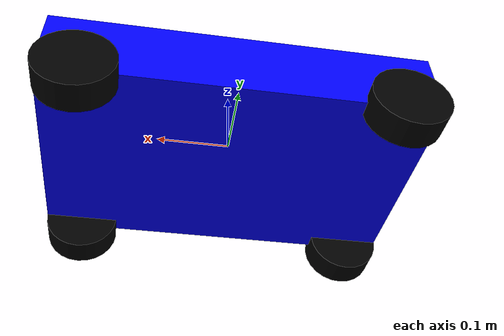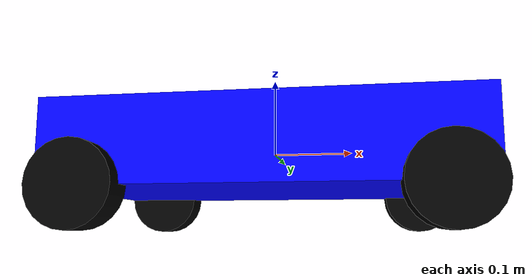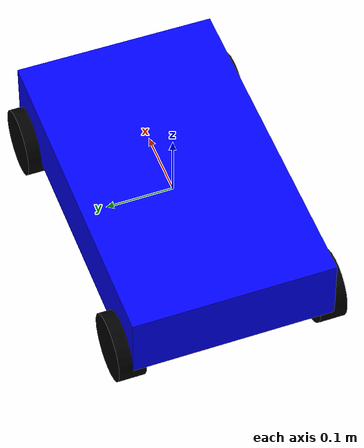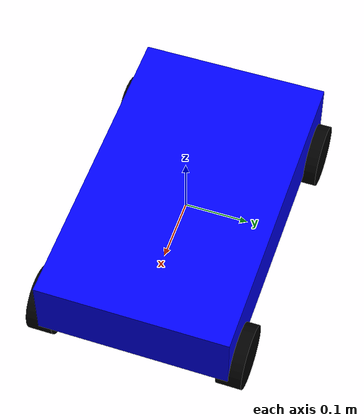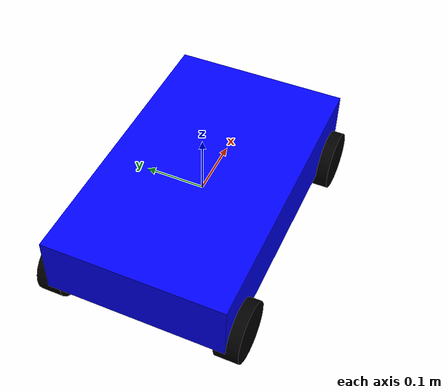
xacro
<?xml version="1.0"?>
<robot name="my_robot" xmlns:xacro="http://www.ros.org/wiki/xacro">

  <!-- Materials -->
  <material name="blue">
    <color rgba="0 0 1 1"/>
  </material>

  <material name="black">
    <color rgba="0 0 0 1"/>
  </material>

  <!-- Base Link -->
  <link name="base_link">

    <visual>
      <geometry>
        <box size="0.5 0.3 0.1"/>
      </geometry>
      <material name="blue"/>
    </visual>

    <collision>
      <geometry>
        <box size="0.5 0.3 0.1"/>
      </geometry>
    </collision>

    <inertial>
      <origin xyz="0 0 0"/>
      <mass value="2.0"/>

      <inertia
        ixx="0.1"
        ixy="0.0"
        ixz="0.0"
        iyy="0.1"
        iyz="0.0"
        izz="0.1"/>
    </inertial>

  </link>

  <!-- Wheel Macro -->
  <xacro:macro name="wheel" params="name x y">

    <link name="${name}">

      <visual>
        <origin rpy="1.57 0 0"/>
        <geometry>
          <cylinder radius="0.05" length="0.04"/>
        </geometry>
        <material name="black"/>
      </visual>

      <collision>
        <origin rpy="1.57 0 0"/>
        <geometry>
          <cylinder radius="0.05" length="0.04"/>
        </geometry>
      </collision>

      <inertial>
        <mass value="0.2"/>
        <origin xyz="0 0 0"/>

        <inertia
          ixx="0.001"
          ixy="0"
          ixz="0"
          iyy="0.001"
          iyz="0"
          izz="0.001"/>
      </inertial>

    </link>

    <joint name="${name}_joint" type="continuous">

      <parent link="base_link"/>
      <child link="${name}"/>

      <origin xyz="${x} ${y} -0.05"/>

      <axis xyz="0 1 0"/>

    </joint>

  </xacro:macro>

  <!-- Wheels -->

  <xacro:wheel
      name="front_left_wheel"
      x="0.2"
      y="0.15"/>

  <xacro:wheel
      name="front_right_wheel"
      x="0.2"
      y="-0.15"/>

  <xacro:wheel
      name="rear_left_wheel"
      x="-0.2"
      y="0.15"/>

  <xacro:wheel
      name="rear_right_wheel"
      x="-0.2"
      y="-0.15"/>

  <!-- Gazebo Plugin -->
  <gazebo>
    <plugin
      name="gazebo_ros_control"
      filename="libgazebo_ros_control.so">
    </plugin>
  </gazebo>

</robot>
